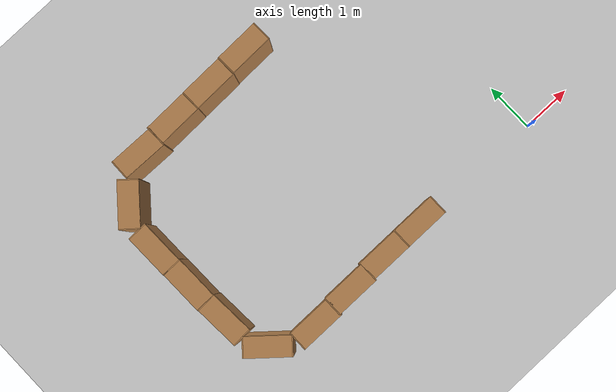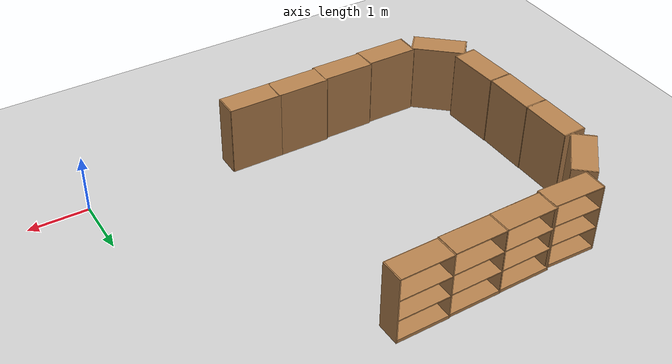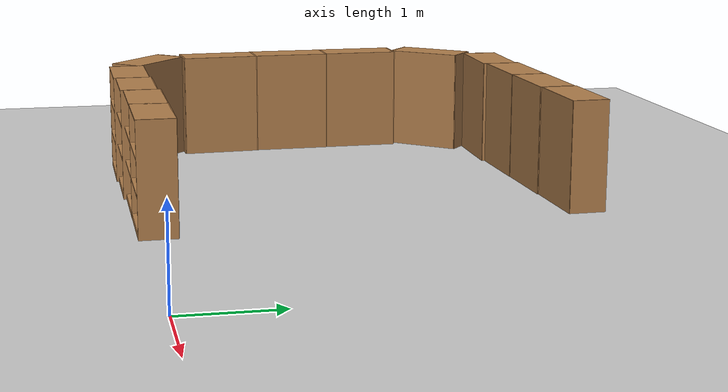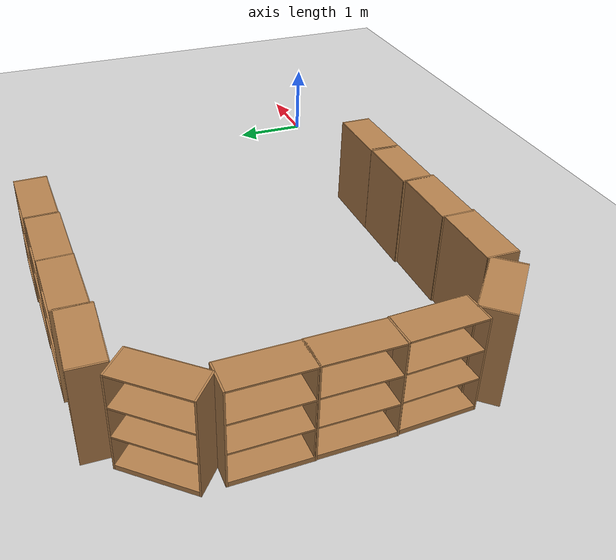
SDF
<sdf version="1.4">
 <world name="default">
  <model name="ground_plane">
   <static>1</static>
   <link name="link">
    <collision name="collision">
     <geometry><plane><normal>0 0 1</normal><size>100 100</size></plane></geometry>
     <surface><friction><ode><mu>100</mu><mu2>50</mu2></ode></friction></surface>
    </collision>
    <visual name="visual">
     <cast_shadows>0</cast_shadows>
     <geometry><plane><normal>0 0 1</normal><size>100 100</size></plane></geometry>
     <material>
      <script><uri>file://media/materials/scripts/gazebo.material</uri><name>Gazebo/Grey</name></script>
     </material>
    </visual>
    <velocity_decay><linear>0</linear><angular>0</angular></velocity_decay>
   </link>
  </model>
  <model name="bookshelf">
   <static>1</static>
   <link name="link">
    <inertial><mass>1</mass></inertial>
    <collision name="back">
     <pose>0 0.005 0.6 0 -0 0</pose>
     <geometry><box><size>0.9 0.01 1.2</size></box></geometry>
    </collision>
    <visual name="visual1">
     <pose>0 0.005 0.6 0 -0 0</pose>
     <geometry><box><size>0.9 0.01 1.2</size></box></geometry>
     <material>
      <script><uri>file://media/materials/scripts/gazebo.material</uri><name>Gazebo/Wood</name></script>
     </material>
    </visual>
    <collision name="left_side">
     <pose>0.45 -0.195 0.6 0 -0 0</pose>
     <geometry><box><size>0.02 0.4 1.2</size></box></geometry>
    </collision>
    <visual name="visual2">
     <pose>0.45 -0.195 0.6 0 -0 0</pose>
     <geometry><box><size>0.02 0.4 1.2</size></box></geometry>
     <material>
      <script><uri>file://media/materials/scripts/gazebo.material</uri><name>Gazebo/Wood</name></script>
     </material>
    </visual>
    <collision name="right_side">
     <pose>-0.45 -0.195 0.6 0 -0 0</pose>
     <geometry><box><size>0.02 0.4 1.2</size></box></geometry>
    </collision>
    <visual name="visual3">
     <pose>-0.45 -0.195 0.6 0 -0 0</pose>
     <geometry><box><size>0.02 0.4 1.2</size></box></geometry>
     <material>
      <script><uri>file://media/materials/scripts/gazebo.material</uri><name>Gazebo/Wood</name></script>
     </material>
    </visual>
    <collision name="bottom">
     <pose>0 -0.195 0.03 0 -0 0</pose>
     <geometry><box><size>0.88 0.4 0.06</size></box></geometry>
    </collision>
    <visual name="visual4">
     <pose>0 -0.195 0.03 0 -0 0</pose>
     <geometry><box><size>0.88 0.4 0.06</size></box></geometry>
     <material>
      <script><uri>file://media/materials/scripts/gazebo.material</uri><name>Gazebo/Wood</name></script>
     </material>
    </visual>
    <collision name="top">
     <pose>0 -0.195 1.19 0 -0 0</pose>
     <geometry><box><size>0.88 0.4 0.02</size></box></geometry>
    </collision>
    <visual name="visual5">
     <pose>0 -0.195 1.19 0 -0 0</pose>
     <geometry><box><size>0.88 0.4 0.02</size></box></geometry>
     <material>
      <script><uri>file://media/materials/scripts/gazebo.material</uri><name>Gazebo/Wood</name></script>
     </material>
    </visual>
    <collision name="low_shelf">
     <pose>0 -0.195 0.43 0 -0 0</pose>
     <geometry><box><size>0.88 0.4 0.02</size></box></geometry>
    </collision>
    <visual name="visual6">
     <pose>0 -0.195 0.43 0 -0 0</pose>
     <geometry><box><size>0.88 0.4 0.02</size></box></geometry>
     <material>
      <script><uri>file://media/materials/scripts/gazebo.material</uri><name>Gazebo/Wood</name></script>
     </material>
    </visual>
    <collision name="high_shelf">
     <pose>0 -0.195 0.8 0 -0 0</pose>
     <geometry><box><size>0.88 0.4 0.02</size></box></geometry>
    </collision>
    <visual name="visual7">
     <pose>0 -0.195 0.8 0 -0 0</pose>
     <geometry><box><size>0.88 0.4 0.02</size></box></geometry>
     <material>
      <script><uri>file://media/materials/scripts/gazebo.material</uri><name>Gazebo/Wood</name></script>
     </material>
    </visual>
    <velocity_decay><linear>0</linear><angular>0</angular></velocity_decay>
   </link>
   <pose>-2.84726 0.305303 0 0 -0 0</pose>
  </model>
  <model name="bookshelf_4">
   <static>1</static>
   <link name="link">
    <inertial><mass>1</mass></inertial>
    <collision name="back">
     <pose>0 0.005 0.6 0 -0 0</pose>
     <geometry><box><size>0.9 0.01 1.2</size></box></geometry>
    </collision>
    <visual name="visual1">
     <pose>0 0.005 0.6 0 -0 0</pose>
     <geometry><box><size>0.9 0.01 1.2</size></box></geometry>
     <material>
      <script><uri>file://media/materials/scripts/gazebo.material</uri><name>Gazebo/Wood</name></script>
     </material>
    </visual>
    <collision name="left_side">
     <pose>0.45 -0.195 0.6 0 -0 0</pose>
     <geometry><box><size>0.02 0.4 1.2</size></box></geometry>
    </collision>
    <visual name="visual2">
     <pose>0.45 -0.195 0.6 0 -0 0</pose>
     <geometry><box><size>0.02 0.4 1.2</size></box></geometry>
     <material>
      <script><uri>file://media/materials/scripts/gazebo.material</uri><name>Gazebo/Wood</name></script>
     </material>
    </visual>
    <collision name="right_side">
     <pose>-0.45 -0.195 0.6 0 -0 0</pose>
     <geometry><box><size>0.02 0.4 1.2</size></box></geometry>
    </collision>
    <visual name="visual3">
     <pose>-0.45 -0.195 0.6 0 -0 0</pose>
     <geometry><box><size>0.02 0.4 1.2</size></box></geometry>
     <material>
      <script><uri>file://media/materials/scripts/gazebo.material</uri><name>Gazebo/Wood</name></script>
     </material>
    </visual>
    <collision name="bottom">
     <pose>0 -0.195 0.03 0 -0 0</pose>
     <geometry><box><size>0.88 0.4 0.06</size></box></geometry>
    </collision>
    <visual name="visual4">
     <pose>0 -0.195 0.03 0 -0 0</pose>
     <geometry><box><size>0.88 0.4 0.06</size></box></geometry>
     <material>
      <script><uri>file://media/materials/scripts/gazebo.material</uri><name>Gazebo/Wood</name></script>
     </material>
    </visual>
    <collision name="top">
     <pose>0 -0.195 1.19 0 -0 0</pose>
     <geometry><box><size>0.88 0.4 0.02</size></box></geometry>
    </collision>
    <visual name="visual5">
     <pose>0 -0.195 1.19 0 -0 0</pose>
     <geometry><box><size>0.88 0.4 0.02</size></box></geometry>
     <material>
      <script><uri>file://media/materials/scripts/gazebo.material</uri><name>Gazebo/Wood</name></script>
     </material>
    </visual>
    <collision name="low_shelf">
     <pose>0 -0.195 0.43 0 -0 0</pose>
     <geometry><box><size>0.88 0.4 0.02</size></box></geometry>
    </collision>
    <visual name="visual6">
     <pose>0 -0.195 0.43 0 -0 0</pose>
     <geometry><box><size>0.88 0.4 0.02</size></box></geometry>
     <material>
      <script><uri>file://media/materials/scripts/gazebo.material</uri><name>Gazebo/Wood</name></script>
     </material>
    </visual>
    <collision name="high_shelf">
     <pose>0 -0.195 0.8 0 -0 0</pose>
     <geometry><box><size>0.88 0.4 0.02</size></box></geometry>
    </collision>
    <visual name="visual7">
     <pose>0 -0.195 0.8 0 -0 0</pose>
     <geometry><box><size>0.88 0.4 0.02</size></box></geometry>
     <material>
      <script><uri>file://media/materials/scripts/gazebo.material</uri><name>Gazebo/Wood</name></script>
     </material>
    </visual>
    <velocity_decay><linear>0</linear><angular>0</angular></velocity_decay>
   </link>
   <pose>-3.91852 4.37082 0 0 0 -3.12</pose>
  </model>
  <model name="bookshelf_5">
   <static>1</static>
   <link name="link">
    <inertial><mass>1</mass></inertial>
    <collision name="back">
     <pose>0 0.005 0.6 0 -0 0</pose>
     <geometry><box><size>0.9 0.01 1.2</size></box></geometry>
    </collision>
    <visual name="visual1">
     <pose>0 0.005 0.6 0 -0 0</pose>
     <geometry><box><size>0.9 0.01 1.2</size></box></geometry>
     <material>
      <script><uri>file://media/materials/scripts/gazebo.material</uri><name>Gazebo/Wood</name></script>
     </material>
    </visual>
    <collision name="left_side">
     <pose>0.45 -0.195 0.6 0 -0 0</pose>
     <geometry><box><size>0.02 0.4 1.2</size></box></geometry>
    </collision>
    <visual name="visual2">
     <pose>0.45 -0.195 0.6 0 -0 0</pose>
     <geometry><box><size>0.02 0.4 1.2</size></box></geometry>
     <material>
      <script><uri>file://media/materials/scripts/gazebo.material</uri><name>Gazebo/Wood</name></script>
     </material>
    </visual>
    <collision name="right_side">
     <pose>-0.45 -0.195 0.6 0 -0 0</pose>
     <geometry><box><size>0.02 0.4 1.2</size></box></geometry>
    </collision>
    <visual name="visual3">
     <pose>-0.45 -0.195 0.6 0 -0 0</pose>
     <geometry><box><size>0.02 0.4 1.2</size></box></geometry>
     <material>
      <script><uri>file://media/materials/scripts/gazebo.material</uri><name>Gazebo/Wood</name></script>
     </material>
    </visual>
    <collision name="bottom">
     <pose>0 -0.195 0.03 0 -0 0</pose>
     <geometry><box><size>0.88 0.4 0.06</size></box></geometry>
    </collision>
    <visual name="visual4">
     <pose>0 -0.195 0.03 0 -0 0</pose>
     <geometry><box><size>0.88 0.4 0.06</size></box></geometry>
     <material>
      <script><uri>file://media/materials/scripts/gazebo.material</uri><name>Gazebo/Wood</name></script>
     </material>
    </visual>
    <collision name="top">
     <pose>0 -0.195 1.19 0 -0 0</pose>
     <geometry><box><size>0.88 0.4 0.02</size></box></geometry>
    </collision>
    <visual name="visual5">
     <pose>0 -0.195 1.19 0 -0 0</pose>
     <geometry><box><size>0.88 0.4 0.02</size></box></geometry>
     <material>
      <script><uri>file://media/materials/scripts/gazebo.material</uri><name>Gazebo/Wood</name></script>
     </material>
    </visual>
    <collision name="low_shelf">
     <pose>0 -0.195 0.43 0 -0 0</pose>
     <geometry><box><size>0.88 0.4 0.02</size></box></geometry>
    </collision>
    <visual name="visual6">
     <pose>0 -0.195 0.43 0 -0 0</pose>
     <geometry><box><size>0.88 0.4 0.02</size></box></geometry>
     <material>
      <script><uri>file://media/materials/scripts/gazebo.material</uri><name>Gazebo/Wood</name></script>
     </material>
    </visual>
    <collision name="high_shelf">
     <pose>0 -0.195 0.8 0 -0 0</pose>
     <geometry><box><size>0.88 0.4 0.02</size></box></geometry>
    </collision>
    <visual name="visual7">
     <pose>0 -0.195 0.8 0 -0 0</pose>
     <geometry><box><size>0.88 0.4 0.02</size></box></geometry>
     <material>
      <script><uri>file://media/materials/scripts/gazebo.material</uri><name>Gazebo/Wood</name></script>
     </material>
    </visual>
    <velocity_decay><linear>0</linear><angular>0</angular></velocity_decay>
   </link>
   <pose>-3.00921 4.40269 0 0 0 -3.12</pose>
  </model>
  <model name="bookshelf_9">
   <static>1</static>
   <link name="link">
    <inertial><mass>1</mass></inertial>
    <collision name="back">
     <pose>0 0.005 0.6 0 -0 0</pose>
     <geometry><box><size>0.9 0.01 1.2</size></box></geometry>
    </collision>
    <visual name="visual1">
     <pose>0 0.005 0.6 0 -0 0</pose>
     <geometry><box><size>0.9 0.01 1.2</size></box></geometry>
     <material>
      <script><uri>file://media/materials/scripts/gazebo.material</uri><name>Gazebo/Wood</name></script>
     </material>
    </visual>
    <collision name="left_side">
     <pose>0.45 -0.195 0.6 0 -0 0</pose>
     <geometry><box><size>0.02 0.4 1.2</size></box></geometry>
    </collision>
    <visual name="visual2">
     <pose>0.45 -0.195 0.6 0 -0 0</pose>
     <geometry><box><size>0.02 0.4 1.2</size></box></geometry>
     <material>
      <script><uri>file://media/materials/scripts/gazebo.material</uri><name>Gazebo/Wood</name></script>
     </material>
    </visual>
    <collision name="right_side">
     <pose>-0.45 -0.195 0.6 0 -0 0</pose>
     <geometry><box><size>0.02 0.4 1.2</size></box></geometry>
    </collision>
    <visual name="visual3">
     <pose>-0.45 -0.195 0.6 0 -0 0</pose>
     <geometry><box><size>0.02 0.4 1.2</size></box></geometry>
     <material>
      <script><uri>file://media/materials/scripts/gazebo.material</uri><name>Gazebo/Wood</name></script>
     </material>
    </visual>
    <collision name="bottom">
     <pose>0 -0.195 0.03 0 -0 0</pose>
     <geometry><box><size>0.88 0.4 0.06</size></box></geometry>
    </collision>
    <visual name="visual4">
     <pose>0 -0.195 0.03 0 -0 0</pose>
     <geometry><box><size>0.88 0.4 0.06</size></box></geometry>
     <material>
      <script><uri>file://media/materials/scripts/gazebo.material</uri><name>Gazebo/Wood</name></script>
     </material>
    </visual>
    <collision name="top">
     <pose>0 -0.195 1.19 0 -0 0</pose>
     <geometry><box><size>0.88 0.4 0.02</size></box></geometry>
    </collision>
    <visual name="visual5">
     <pose>0 -0.195 1.19 0 -0 0</pose>
     <geometry><box><size>0.88 0.4 0.02</size></box></geometry>
     <material>
      <script><uri>file://media/materials/scripts/gazebo.material</uri><name>Gazebo/Wood</name></script>
     </material>
    </visual>
    <collision name="low_shelf">
     <pose>0 -0.195 0.43 0 -0 0</pose>
     <geometry><box><size>0.88 0.4 0.02</size></box></geometry>
    </collision>
    <visual name="visual6">
     <pose>0 -0.195 0.43 0 -0 0</pose>
     <geometry><box><size>0.88 0.4 0.02</size></box></geometry>
     <material>
      <script><uri>file://media/materials/scripts/gazebo.material</uri><name>Gazebo/Wood</name></script>
     </material>
    </visual>
    <collision name="high_shelf">
     <pose>0 -0.195 0.8 0 -0 0</pose>
     <geometry><box><size>0.88 0.4 0.02</size></box></geometry>
    </collision>
    <visual name="visual7">
     <pose>0 -0.195 0.8 0 -0 0</pose>
     <geometry><box><size>0.88 0.4 0.02</size></box></geometry>
     <material>
      <script><uri>file://media/materials/scripts/gazebo.material</uri><name>Gazebo/Wood</name></script>
     </material>
    </visual>
    <velocity_decay><linear>0</linear><angular>0</angular></velocity_decay>
   </link>
   <pose>-3.71662 0.30328 0 0 -0 0</pose>
  </model>
  <model name="bookshelf_10">
   <static>1</static>
   <link name="link">
    <inertial><mass>1</mass></inertial>
    <collision name="back">
     <pose>0 0.005 0.6 0 -0 0</pose>
     <geometry><box><size>0.9 0.01 1.2</size></box></geometry>
    </collision>
    <visual name="visual1">
     <pose>0 0.005 0.6 0 -0 0</pose>
     <geometry><box><size>0.9 0.01 1.2</size></box></geometry>
     <material>
      <script><uri>file://media/materials/scripts/gazebo.material</uri><name>Gazebo/Wood</name></script>
     </material>
    </visual>
    <collision name="left_side">
     <pose>0.45 -0.195 0.6 0 -0 0</pose>
     <geometry><box><size>0.02 0.4 1.2</size></box></geometry>
    </collision>
    <visual name="visual2">
     <pose>0.45 -0.195 0.6 0 -0 0</pose>
     <geometry><box><size>0.02 0.4 1.2</size></box></geometry>
     <material>
      <script><uri>file://media/materials/scripts/gazebo.material</uri><name>Gazebo/Wood</name></script>
     </material>
    </visual>
    <collision name="right_side">
     <pose>-0.45 -0.195 0.6 0 -0 0</pose>
     <geometry><box><size>0.02 0.4 1.2</size></box></geometry>
    </collision>
    <visual name="visual3">
     <pose>-0.45 -0.195 0.6 0 -0 0</pose>
     <geometry><box><size>0.02 0.4 1.2</size></box></geometry>
     <material>
      <script><uri>file://media/materials/scripts/gazebo.material</uri><name>Gazebo/Wood</name></script>
     </material>
    </visual>
    <collision name="bottom">
     <pose>0 -0.195 0.03 0 -0 0</pose>
     <geometry><box><size>0.88 0.4 0.06</size></box></geometry>
    </collision>
    <visual name="visual4">
     <pose>0 -0.195 0.03 0 -0 0</pose>
     <geometry><box><size>0.88 0.4 0.06</size></box></geometry>
     <material>
      <script><uri>file://media/materials/scripts/gazebo.material</uri><name>Gazebo/Wood</name></script>
     </material>
    </visual>
    <collision name="top">
     <pose>0 -0.195 1.19 0 -0 0</pose>
     <geometry><box><size>0.88 0.4 0.02</size></box></geometry>
    </collision>
    <visual name="visual5">
     <pose>0 -0.195 1.19 0 -0 0</pose>
     <geometry><box><size>0.88 0.4 0.02</size></box></geometry>
     <material>
      <script><uri>file://media/materials/scripts/gazebo.material</uri><name>Gazebo/Wood</name></script>
     </material>
    </visual>
    <collision name="low_shelf">
     <pose>0 -0.195 0.43 0 -0 0</pose>
     <geometry><box><size>0.88 0.4 0.02</size></box></geometry>
    </collision>
    <visual name="visual6">
     <pose>0 -0.195 0.43 0 -0 0</pose>
     <geometry><box><size>0.88 0.4 0.02</size></box></geometry>
     <material>
      <script><uri>file://media/materials/scripts/gazebo.material</uri><name>Gazebo/Wood</name></script>
     </material>
    </visual>
    <collision name="high_shelf">
     <pose>0 -0.195 0.8 0 -0 0</pose>
     <geometry><box><size>0.88 0.4 0.02</size></box></geometry>
    </collision>
    <visual name="visual7">
     <pose>0 -0.195 0.8 0 -0 0</pose>
     <geometry><box><size>0.88 0.4 0.02</size></box></geometry>
     <material>
      <script><uri>file://media/materials/scripts/gazebo.material</uri><name>Gazebo/Wood</name></script>
     </material>
    </visual>
    <velocity_decay><linear>0</linear><angular>0</angular></velocity_decay>
   </link>
   <pose>-4.59576 0.271281 0 0 -0 0</pose>
  </model>
  <model name="bookshelf_13">
   <static>1</static>
   <link name="link">
    <inertial><mass>1</mass></inertial>
    <collision name="back">
     <pose>0 0.005 0.6 0 -0 0</pose>
     <geometry><box><size>0.9 0.01 1.2</size></box></geometry>
    </collision>
    <visual name="visual1">
     <pose>0 0.005 0.6 0 -0 0</pose>
     <geometry><box><size>0.9 0.01 1.2</size></box></geometry>
     <material>
      <script><uri>file://media/materials/scripts/gazebo.material</uri><name>Gazebo/Wood</name></script>
     </material>
    </visual>
    <collision name="left_side">
     <pose>0.45 -0.195 0.6 0 -0 0</pose>
     <geometry><box><size>0.02 0.4 1.2</size></box></geometry>
    </collision>
    <visual name="visual2">
     <pose>0.45 -0.195 0.6 0 -0 0</pose>
     <geometry><box><size>0.02 0.4 1.2</size></box></geometry>
     <material>
      <script><uri>file://media/materials/scripts/gazebo.material</uri><name>Gazebo/Wood</name></script>
     </material>
    </visual>
    <collision name="right_side">
     <pose>-0.45 -0.195 0.6 0 -0 0</pose>
     <geometry><box><size>0.02 0.4 1.2</size></box></geometry>
    </collision>
    <visual name="visual3">
     <pose>-0.45 -0.195 0.6 0 -0 0</pose>
     <geometry><box><size>0.02 0.4 1.2</size></box></geometry>
     <material>
      <script><uri>file://media/materials/scripts/gazebo.material</uri><name>Gazebo/Wood</name></script>
     </material>
    </visual>
    <collision name="bottom">
     <pose>0 -0.195 0.03 0 -0 0</pose>
     <geometry><box><size>0.88 0.4 0.06</size></box></geometry>
    </collision>
    <visual name="visual4">
     <pose>0 -0.195 0.03 0 -0 0</pose>
     <geometry><box><size>0.88 0.4 0.06</size></box></geometry>
     <material>
      <script><uri>file://media/materials/scripts/gazebo.material</uri><name>Gazebo/Wood</name></script>
     </material>
    </visual>
    <collision name="top">
     <pose>0 -0.195 1.19 0 -0 0</pose>
     <geometry><box><size>0.88 0.4 0.02</size></box></geometry>
    </collision>
    <visual name="visual5">
     <pose>0 -0.195 1.19 0 -0 0</pose>
     <geometry><box><size>0.88 0.4 0.02</size></box></geometry>
     <material>
      <script><uri>file://media/materials/scripts/gazebo.material</uri><name>Gazebo/Wood</name></script>
     </material>
    </visual>
    <collision name="low_shelf">
     <pose>0 -0.195 0.43 0 -0 0</pose>
     <geometry><box><size>0.88 0.4 0.02</size></box></geometry>
    </collision>
    <visual name="visual6">
     <pose>0 -0.195 0.43 0 -0 0</pose>
     <geometry><box><size>0.88 0.4 0.02</size></box></geometry>
     <material>
      <script><uri>file://media/materials/scripts/gazebo.material</uri><name>Gazebo/Wood</name></script>
     </material>
    </visual>
    <collision name="high_shelf">
     <pose>0 -0.195 0.8 0 -0 0</pose>
     <geometry><box><size>0.88 0.4 0.02</size></box></geometry>
    </collision>
    <visual name="visual7">
     <pose>0 -0.195 0.8 0 -0 0</pose>
     <geometry><box><size>0.88 0.4 0.02</size></box></geometry>
     <material>
      <script><uri>file://media/materials/scripts/gazebo.material</uri><name>Gazebo/Wood</name></script>
     </material>
    </visual>
    <velocity_decay><linear>0</linear><angular>0</angular></velocity_decay>
   </link>
   <pose>-5.47579 0.247086 0 0 -0 0</pose>
  </model>
  <model name="bookshelf_14">
   <static>1</static>
   <link name="link">
    <inertial><mass>1</mass></inertial>
    <collision name="back">
     <pose>0 0.005 0.6 0 -0 0</pose>
     <geometry><box><size>0.9 0.01 1.2</size></box></geometry>
    </collision>
    <visual name="visual1">
     <pose>0 0.005 0.6 0 -0 0</pose>
     <geometry><box><size>0.9 0.01 1.2</size></box></geometry>
     <material>
      <script><uri>file://media/materials/scripts/gazebo.material</uri><name>Gazebo/Wood</name></script>
     </material>
    </visual>
    <collision name="left_side">
     <pose>0.45 -0.195 0.6 0 -0 0</pose>
     <geometry><box><size>0.02 0.4 1.2</size></box></geometry>
    </collision>
    <visual name="visual2">
     <pose>0.45 -0.195 0.6 0 -0 0</pose>
     <geometry><box><size>0.02 0.4 1.2</size></box></geometry>
     <material>
      <script><uri>file://media/materials/scripts/gazebo.material</uri><name>Gazebo/Wood</name></script>
     </material>
    </visual>
    <collision name="right_side">
     <pose>-0.45 -0.195 0.6 0 -0 0</pose>
     <geometry><box><size>0.02 0.4 1.2</size></box></geometry>
    </collision>
    <visual name="visual3">
     <pose>-0.45 -0.195 0.6 0 -0 0</pose>
     <geometry><box><size>0.02 0.4 1.2</size></box></geometry>
     <material>
      <script><uri>file://media/materials/scripts/gazebo.material</uri><name>Gazebo/Wood</name></script>
     </material>
    </visual>
    <collision name="bottom">
     <pose>0 -0.195 0.03 0 -0 0</pose>
     <geometry><box><size>0.88 0.4 0.06</size></box></geometry>
    </collision>
    <visual name="visual4">
     <pose>0 -0.195 0.03 0 -0 0</pose>
     <geometry><box><size>0.88 0.4 0.06</size></box></geometry>
     <material>
      <script><uri>file://media/materials/scripts/gazebo.material</uri><name>Gazebo/Wood</name></script>
     </material>
    </visual>
    <collision name="top">
     <pose>0 -0.195 1.19 0 -0 0</pose>
     <geometry><box><size>0.88 0.4 0.02</size></box></geometry>
    </collision>
    <visual name="visual5">
     <pose>0 -0.195 1.19 0 -0 0</pose>
     <geometry><box><size>0.88 0.4 0.02</size></box></geometry>
     <material>
      <script><uri>file://media/materials/scripts/gazebo.material</uri><name>Gazebo/Wood</name></script>
     </material>
    </visual>
    <collision name="low_shelf">
     <pose>0 -0.195 0.43 0 -0 0</pose>
     <geometry><box><size>0.88 0.4 0.02</size></box></geometry>
    </collision>
    <visual name="visual6">
     <pose>0 -0.195 0.43 0 -0 0</pose>
     <geometry><box><size>0.88 0.4 0.02</size></box></geometry>
     <material>
      <script><uri>file://media/materials/scripts/gazebo.material</uri><name>Gazebo/Wood</name></script>
     </material>
    </visual>
    <collision name="high_shelf">
     <pose>0 -0.195 0.8 0 -0 0</pose>
     <geometry><box><size>0.88 0.4 0.02</size></box></geometry>
    </collision>
    <visual name="visual7">
     <pose>0 -0.195 0.8 0 -0 0</pose>
     <geometry><box><size>0.88 0.4 0.02</size></box></geometry>
     <material>
      <script><uri>file://media/materials/scripts/gazebo.material</uri><name>Gazebo/Wood</name></script>
     </material>
    </visual>
    <velocity_decay><linear>0</linear><angular>0</angular></velocity_decay>
   </link>
   <pose>-6.25337 0.499711 0 0 0 -0.72</pose>
  </model>
  <model name="bookshelf_15">
   <static>1</static>
   <link name="link">
    <inertial><mass>1</mass></inertial>
    <collision name="back">
     <pose>0 0.005 0.6 0 -0 0</pose>
     <geometry><box><size>0.9 0.01 1.2</size></box></geometry>
    </collision>
    <visual name="visual1">
     <pose>0 0.005 0.6 0 -0 0</pose>
     <geometry><box><size>0.9 0.01 1.2</size></box></geometry>
     <material>
      <script><uri>file://media/materials/scripts/gazebo.material</uri><name>Gazebo/Wood</name></script>
     </material>
    </visual>
    <collision name="left_side">
     <pose>0.45 -0.195 0.6 0 -0 0</pose>
     <geometry><box><size>0.02 0.4 1.2</size></box></geometry>
    </collision>
    <visual name="visual2">
     <pose>0.45 -0.195 0.6 0 -0 0</pose>
     <geometry><box><size>0.02 0.4 1.2</size></box></geometry>
     <material>
      <script><uri>file://media/materials/scripts/gazebo.material</uri><name>Gazebo/Wood</name></script>
     </material>
    </visual>
    <collision name="right_side">
     <pose>-0.45 -0.195 0.6 0 -0 0</pose>
     <geometry><box><size>0.02 0.4 1.2</size></box></geometry>
    </collision>
    <visual name="visual3">
     <pose>-0.45 -0.195 0.6 0 -0 0</pose>
     <geometry><box><size>0.02 0.4 1.2</size></box></geometry>
     <material>
      <script><uri>file://media/materials/scripts/gazebo.material</uri><name>Gazebo/Wood</name></script>
     </material>
    </visual>
    <collision name="bottom">
     <pose>0 -0.195 0.03 0 -0 0</pose>
     <geometry><box><size>0.88 0.4 0.06</size></box></geometry>
    </collision>
    <visual name="visual4">
     <pose>0 -0.195 0.03 0 -0 0</pose>
     <geometry><box><size>0.88 0.4 0.06</size></box></geometry>
     <material>
      <script><uri>file://media/materials/scripts/gazebo.material</uri><name>Gazebo/Wood</name></script>
     </material>
    </visual>
    <collision name="top">
     <pose>0 -0.195 1.19 0 -0 0</pose>
     <geometry><box><size>0.88 0.4 0.02</size></box></geometry>
    </collision>
    <visual name="visual5">
     <pose>0 -0.195 1.19 0 -0 0</pose>
     <geometry><box><size>0.88 0.4 0.02</size></box></geometry>
     <material>
      <script><uri>file://media/materials/scripts/gazebo.material</uri><name>Gazebo/Wood</name></script>
     </material>
    </visual>
    <collision name="low_shelf">
     <pose>0 -0.195 0.43 0 -0 0</pose>
     <geometry><box><size>0.88 0.4 0.02</size></box></geometry>
    </collision>
    <visual name="visual6">
     <pose>0 -0.195 0.43 0 -0 0</pose>
     <geometry><box><size>0.88 0.4 0.02</size></box></geometry>
     <material>
      <script><uri>file://media/materials/scripts/gazebo.material</uri><name>Gazebo/Wood</name></script>
     </material>
    </visual>
    <collision name="high_shelf">
     <pose>0 -0.195 0.8 0 -0 0</pose>
     <geometry><box><size>0.88 0.4 0.02</size></box></geometry>
    </collision>
    <visual name="visual7">
     <pose>0 -0.195 0.8 0 -0 0</pose>
     <geometry><box><size>0.88 0.4 0.02</size></box></geometry>
     <material>
      <script><uri>file://media/materials/scripts/gazebo.material</uri><name>Gazebo/Wood</name></script>
     </material>
    </visual>
    <velocity_decay><linear>0</linear><angular>0</angular></velocity_decay>
   </link>
   <pose>-4.81679 4.34624 0 0 0 -3.12</pose>
  </model>
  <model name="bookshelf_16">
   <static>1</static>
   <link name="link">
    <inertial><mass>1</mass></inertial>
    <collision name="back">
     <pose>0 0.005 0.6 0 -0 0</pose>
     <geometry><box><size>0.9 0.01 1.2</size></box></geometry>
    </collision>
    <visual name="visual1">
     <pose>0 0.005 0.6 0 -0 0</pose>
     <geometry><box><size>0.9 0.01 1.2</size></box></geometry>
     <material>
      <script><uri>file://media/materials/scripts/gazebo.material</uri><name>Gazebo/Wood</name></script>
     </material>
    </visual>
    <collision name="left_side">
     <pose>0.45 -0.195 0.6 0 -0 0</pose>
     <geometry><box><size>0.02 0.4 1.2</size></box></geometry>
    </collision>
    <visual name="visual2">
     <pose>0.45 -0.195 0.6 0 -0 0</pose>
     <geometry><box><size>0.02 0.4 1.2</size></box></geometry>
     <material>
      <script><uri>file://media/materials/scripts/gazebo.material</uri><name>Gazebo/Wood</name></script>
     </material>
    </visual>
    <collision name="right_side">
     <pose>-0.45 -0.195 0.6 0 -0 0</pose>
     <geometry><box><size>0.02 0.4 1.2</size></box></geometry>
    </collision>
    <visual name="visual3">
     <pose>-0.45 -0.195 0.6 0 -0 0</pose>
     <geometry><box><size>0.02 0.4 1.2</size></box></geometry>
     <material>
      <script><uri>file://media/materials/scripts/gazebo.material</uri><name>Gazebo/Wood</name></script>
     </material>
    </visual>
    <collision name="bottom">
     <pose>0 -0.195 0.03 0 -0 0</pose>
     <geometry><box><size>0.88 0.4 0.06</size></box></geometry>
    </collision>
    <visual name="visual4">
     <pose>0 -0.195 0.03 0 -0 0</pose>
     <geometry><box><size>0.88 0.4 0.06</size></box></geometry>
     <material>
      <script><uri>file://media/materials/scripts/gazebo.material</uri><name>Gazebo/Wood</name></script>
     </material>
    </visual>
    <collision name="top">
     <pose>0 -0.195 1.19 0 -0 0</pose>
     <geometry><box><size>0.88 0.4 0.02</size></box></geometry>
    </collision>
    <visual name="visual5">
     <pose>0 -0.195 1.19 0 -0 0</pose>
     <geometry><box><size>0.88 0.4 0.02</size></box></geometry>
     <material>
      <script><uri>file://media/materials/scripts/gazebo.material</uri><name>Gazebo/Wood</name></script>
     </material>
    </visual>
    <collision name="low_shelf">
     <pose>0 -0.195 0.43 0 -0 0</pose>
     <geometry><box><size>0.88 0.4 0.02</size></box></geometry>
    </collision>
    <visual name="visual6">
     <pose>0 -0.195 0.43 0 -0 0</pose>
     <geometry><box><size>0.88 0.4 0.02</size></box></geometry>
     <material>
      <script><uri>file://media/materials/scripts/gazebo.material</uri><name>Gazebo/Wood</name></script>
     </material>
    </visual>
    <collision name="high_shelf">
     <pose>0 -0.195 0.8 0 -0 0</pose>
     <geometry><box><size>0.88 0.4 0.02</size></box></geometry>
    </collision>
    <visual name="visual7">
     <pose>0 -0.195 0.8 0 -0 0</pose>
     <geometry><box><size>0.88 0.4 0.02</size></box></geometry>
     <material>
      <script><uri>file://media/materials/scripts/gazebo.material</uri><name>Gazebo/Wood</name></script>
     </material>
    </visual>
    <velocity_decay><linear>0</linear><angular>0</angular></velocity_decay>
   </link>
   <pose>-6.31756 3.81372 0 0 0 -2.28</pose>
  </model>
  <model name="bookshelf_17">
   <static>1</static>
   <link name="link">
    <inertial><mass>1</mass></inertial>
    <collision name="back">
     <pose>0 0.005 0.6 0 -0 0</pose>
     <geometry><box><size>0.9 0.01 1.2</size></box></geometry>
    </collision>
    <visual name="visual1">
     <pose>0 0.005 0.6 0 -0 0</pose>
     <geometry><box><size>0.9 0.01 1.2</size></box></geometry>
     <material>
      <script><uri>file://media/materials/scripts/gazebo.material</uri><name>Gazebo/Wood</name></script>
     </material>
    </visual>
    <collision name="left_side">
     <pose>0.45 -0.195 0.6 0 -0 0</pose>
     <geometry><box><size>0.02 0.4 1.2</size></box></geometry>
    </collision>
    <visual name="visual2">
     <pose>0.45 -0.195 0.6 0 -0 0</pose>
     <geometry><box><size>0.02 0.4 1.2</size></box></geometry>
     <material>
      <script><uri>file://media/materials/scripts/gazebo.material</uri><name>Gazebo/Wood</name></script>
     </material>
    </visual>
    <collision name="right_side">
     <pose>-0.45 -0.195 0.6 0 -0 0</pose>
     <geometry><box><size>0.02 0.4 1.2</size></box></geometry>
    </collision>
    <visual name="visual3">
     <pose>-0.45 -0.195 0.6 0 -0 0</pose>
     <geometry><box><size>0.02 0.4 1.2</size></box></geometry>
     <material>
      <script><uri>file://media/materials/scripts/gazebo.material</uri><name>Gazebo/Wood</name></script>
     </material>
    </visual>
    <collision name="bottom">
     <pose>0 -0.195 0.03 0 -0 0</pose>
     <geometry><box><size>0.88 0.4 0.06</size></box></geometry>
    </collision>
    <visual name="visual4">
     <pose>0 -0.195 0.03 0 -0 0</pose>
     <geometry><box><size>0.88 0.4 0.06</size></box></geometry>
     <material>
      <script><uri>file://media/materials/scripts/gazebo.material</uri><name>Gazebo/Wood</name></script>
     </material>
    </visual>
    <collision name="top">
     <pose>0 -0.195 1.19 0 -0 0</pose>
     <geometry><box><size>0.88 0.4 0.02</size></box></geometry>
    </collision>
    <visual name="visual5">
     <pose>0 -0.195 1.19 0 -0 0</pose>
     <geometry><box><size>0.88 0.4 0.02</size></box></geometry>
     <material>
      <script><uri>file://media/materials/scripts/gazebo.material</uri><name>Gazebo/Wood</name></script>
     </material>
    </visual>
    <collision name="low_shelf">
     <pose>0 -0.195 0.43 0 -0 0</pose>
     <geometry><box><size>0.88 0.4 0.02</size></box></geometry>
    </collision>
    <visual name="visual6">
     <pose>0 -0.195 0.43 0 -0 0</pose>
     <geometry><box><size>0.88 0.4 0.02</size></box></geometry>
     <material>
      <script><uri>file://media/materials/scripts/gazebo.material</uri><name>Gazebo/Wood</name></script>
     </material>
    </visual>
    <collision name="high_shelf">
     <pose>0 -0.195 0.8 0 -0 0</pose>
     <geometry><box><size>0.88 0.4 0.02</size></box></geometry>
    </collision>
    <visual name="visual7">
     <pose>0 -0.195 0.8 0 -0 0</pose>
     <geometry><box><size>0.88 0.4 0.02</size></box></geometry>
     <material>
      <script><uri>file://media/materials/scripts/gazebo.material</uri><name>Gazebo/Wood</name></script>
     </material>
    </visual>
    <velocity_decay><linear>0</linear><angular>0</angular></velocity_decay>
   </link>
   <pose>-5.71994 4.30846 0 0 -0 3.12318</pose>
  </model>
  <model name="bookshelf_21">
   <static>1</static>
   <link name="link">
    <inertial><mass>1</mass></inertial>
    <collision name="back">
     <pose>0 0.005 0.6 0 -0 0</pose>
     <geometry><box><size>0.9 0.01 1.2</size></box></geometry>
    </collision>
    <visual name="visual1">
     <pose>0 0.005 0.6 0 -0 0</pose>
     <geometry><box><size>0.9 0.01 1.2</size></box></geometry>
     <material>
      <script><uri>file://media/materials/scripts/gazebo.material</uri><name>Gazebo/Wood</name></script>
     </material>
    </visual>
    <collision name="left_side">
     <pose>0.45 -0.195 0.6 0 -0 0</pose>
     <geometry><box><size>0.02 0.4 1.2</size></box></geometry>
    </collision>
    <visual name="visual2">
     <pose>0.45 -0.195 0.6 0 -0 0</pose>
     <geometry><box><size>0.02 0.4 1.2</size></box></geometry>
     <material>
      <script><uri>file://media/materials/scripts/gazebo.material</uri><name>Gazebo/Wood</name></script>
     </material>
    </visual>
    <collision name="right_side">
     <pose>-0.45 -0.195 0.6 0 -0 0</pose>
     <geometry><box><size>0.02 0.4 1.2</size></box></geometry>
    </collision>
    <visual name="visual3">
     <pose>-0.45 -0.195 0.6 0 -0 0</pose>
     <geometry><box><size>0.02 0.4 1.2</size></box></geometry>
     <material>
      <script><uri>file://media/materials/scripts/gazebo.material</uri><name>Gazebo/Wood</name></script>
     </material>
    </visual>
    <collision name="bottom">
     <pose>0 -0.195 0.03 0 -0 0</pose>
     <geometry><box><size>0.88 0.4 0.06</size></box></geometry>
    </collision>
    <visual name="visual4">
     <pose>0 -0.195 0.03 0 -0 0</pose>
     <geometry><box><size>0.88 0.4 0.06</size></box></geometry>
     <material>
      <script><uri>file://media/materials/scripts/gazebo.material</uri><name>Gazebo/Wood</name></script>
     </material>
    </visual>
    <collision name="top">
     <pose>0 -0.195 1.19 0 -0 0</pose>
     <geometry><box><size>0.88 0.4 0.02</size></box></geometry>
    </collision>
    <visual name="visual5">
     <pose>0 -0.195 1.19 0 -0 0</pose>
     <geometry><box><size>0.88 0.4 0.02</size></box></geometry>
     <material>
      <script><uri>file://media/materials/scripts/gazebo.material</uri><name>Gazebo/Wood</name></script>
     </material>
    </visual>
    <collision name="low_shelf">
     <pose>0 -0.195 0.43 0 -0 0</pose>
     <geometry><box><size>0.88 0.4 0.02</size></box></geometry>
    </collision>
    <visual name="visual6">
     <pose>0 -0.195 0.43 0 -0 0</pose>
     <geometry><box><size>0.88 0.4 0.02</size></box></geometry>
     <material>
      <script><uri>file://media/materials/scripts/gazebo.material</uri><name>Gazebo/Wood</name></script>
     </material>
    </visual>
    <collision name="high_shelf">
     <pose>0 -0.195 0.8 0 -0 0</pose>
     <geometry><box><size>0.88 0.4 0.02</size></box></geometry>
    </collision>
    <visual name="visual7">
     <pose>0 -0.195 0.8 0 -0 0</pose>
     <geometry><box><size>0.88 0.4 0.02</size></box></geometry>
     <material>
      <script><uri>file://media/materials/scripts/gazebo.material</uri><name>Gazebo/Wood</name></script>
     </material>
    </visual>
    <velocity_decay><linear>0</linear><angular>0</angular></velocity_decay>
   </link>
   <pose>-6.43313 1.24556 0 0 0 -1.52</pose>
  </model>
  <model name="bookshelf_22">
   <static>1</static>
   <link name="link">
    <inertial><mass>1</mass></inertial>
    <collision name="back">
     <pose>0 0.005 0.6 0 -0 0</pose>
     <geometry><box><size>0.9 0.01 1.2</size></box></geometry>
    </collision>
    <visual name="visual1">
     <pose>0 0.005 0.6 0 -0 0</pose>
     <geometry><box><size>0.9 0.01 1.2</size></box></geometry>
     <material>
      <script><uri>file://media/materials/scripts/gazebo.material</uri><name>Gazebo/Wood</name></script>
     </material>
    </visual>
    <collision name="left_side">
     <pose>0.45 -0.195 0.6 0 -0 0</pose>
     <geometry><box><size>0.02 0.4 1.2</size></box></geometry>
    </collision>
    <visual name="visual2">
     <pose>0.45 -0.195 0.6 0 -0 0</pose>
     <geometry><box><size>0.02 0.4 1.2</size></box></geometry>
     <material>
      <script><uri>file://media/materials/scripts/gazebo.material</uri><name>Gazebo/Wood</name></script>
     </material>
    </visual>
    <collision name="right_side">
     <pose>-0.45 -0.195 0.6 0 -0 0</pose>
     <geometry><box><size>0.02 0.4 1.2</size></box></geometry>
    </collision>
    <visual name="visual3">
     <pose>-0.45 -0.195 0.6 0 -0 0</pose>
     <geometry><box><size>0.02 0.4 1.2</size></box></geometry>
     <material>
      <script><uri>file://media/materials/scripts/gazebo.material</uri><name>Gazebo/Wood</name></script>
     </material>
    </visual>
    <collision name="bottom">
     <pose>0 -0.195 0.03 0 -0 0</pose>
     <geometry><box><size>0.88 0.4 0.06</size></box></geometry>
    </collision>
    <visual name="visual4">
     <pose>0 -0.195 0.03 0 -0 0</pose>
     <geometry><box><size>0.88 0.4 0.06</size></box></geometry>
     <material>
      <script><uri>file://media/materials/scripts/gazebo.material</uri><name>Gazebo/Wood</name></script>
     </material>
    </visual>
    <collision name="top">
     <pose>0 -0.195 1.19 0 -0 0</pose>
     <geometry><box><size>0.88 0.4 0.02</size></box></geometry>
    </collision>
    <visual name="visual5">
     <pose>0 -0.195 1.19 0 -0 0</pose>
     <geometry><box><size>0.88 0.4 0.02</size></box></geometry>
     <material>
      <script><uri>file://media/materials/scripts/gazebo.material</uri><name>Gazebo/Wood</name></script>
     </material>
    </visual>
    <collision name="low_shelf">
     <pose>0 -0.195 0.43 0 -0 0</pose>
     <geometry><box><size>0.88 0.4 0.02</size></box></geometry>
    </collision>
    <visual name="visual6">
     <pose>0 -0.195 0.43 0 -0 0</pose>
     <geometry><box><size>0.88 0.4 0.02</size></box></geometry>
     <material>
      <script><uri>file://media/materials/scripts/gazebo.material</uri><name>Gazebo/Wood</name></script>
     </material>
    </visual>
    <collision name="high_shelf">
     <pose>0 -0.195 0.8 0 -0 0</pose>
     <geometry><box><size>0.88 0.4 0.02</size></box></geometry>
    </collision>
    <visual name="visual7">
     <pose>0 -0.195 0.8 0 -0 0</pose>
     <geometry><box><size>0.88 0.4 0.02</size></box></geometry>
     <material>
      <script><uri>file://media/materials/scripts/gazebo.material</uri><name>Gazebo/Wood</name></script>
     </material>
    </visual>
    <velocity_decay><linear>0</linear><angular>0</angular></velocity_decay>
   </link>
   <pose>-6.47103 2.13867 0 0 0 -1.56</pose>
  </model>
  <model name="bookshelf_23">
   <static>1</static>
   <link name="link">
    <inertial><mass>1</mass></inertial>
    <collision name="back">
     <pose>0 0.005 0.6 0 -0 0</pose>
     <geometry><box><size>0.9 0.01 1.2</size></box></geometry>
    </collision>
    <visual name="visual1">
     <pose>0 0.005 0.6 0 -0 0</pose>
     <geometry><box><size>0.9 0.01 1.2</size></box></geometry>
     <material>
      <script><uri>file://media/materials/scripts/gazebo.material</uri><name>Gazebo/Wood</name></script>
     </material>
    </visual>
    <collision name="left_side">
     <pose>0.45 -0.195 0.6 0 -0 0</pose>
     <geometry><box><size>0.02 0.4 1.2</size></box></geometry>
    </collision>
    <visual name="visual2">
     <pose>0.45 -0.195 0.6 0 -0 0</pose>
     <geometry><box><size>0.02 0.4 1.2</size></box></geometry>
     <material>
      <script><uri>file://media/materials/scripts/gazebo.material</uri><name>Gazebo/Wood</name></script>
     </material>
    </visual>
    <collision name="right_side">
     <pose>-0.45 -0.195 0.6 0 -0 0</pose>
     <geometry><box><size>0.02 0.4 1.2</size></box></geometry>
    </collision>
    <visual name="visual3">
     <pose>-0.45 -0.195 0.6 0 -0 0</pose>
     <geometry><box><size>0.02 0.4 1.2</size></box></geometry>
     <material>
      <script><uri>file://media/materials/scripts/gazebo.material</uri><name>Gazebo/Wood</name></script>
     </material>
    </visual>
    <collision name="bottom">
     <pose>0 -0.195 0.03 0 -0 0</pose>
     <geometry><box><size>0.88 0.4 0.06</size></box></geometry>
    </collision>
    <visual name="visual4">
     <pose>0 -0.195 0.03 0 -0 0</pose>
     <geometry><box><size>0.88 0.4 0.06</size></box></geometry>
     <material>
      <script><uri>file://media/materials/scripts/gazebo.material</uri><name>Gazebo/Wood</name></script>
     </material>
    </visual>
    <collision name="top">
     <pose>0 -0.195 1.19 0 -0 0</pose>
     <geometry><box><size>0.88 0.4 0.02</size></box></geometry>
    </collision>
    <visual name="visual5">
     <pose>0 -0.195 1.19 0 -0 0</pose>
     <geometry><box><size>0.88 0.4 0.02</size></box></geometry>
     <material>
      <script><uri>file://media/materials/scripts/gazebo.material</uri><name>Gazebo/Wood</name></script>
     </material>
    </visual>
    <collision name="low_shelf">
     <pose>0 -0.195 0.43 0 -0 0</pose>
     <geometry><box><size>0.88 0.4 0.02</size></box></geometry>
    </collision>
    <visual name="visual6">
     <pose>0 -0.195 0.43 0 -0 0</pose>
     <geometry><box><size>0.88 0.4 0.02</size></box></geometry>
     <material>
      <script><uri>file://media/materials/scripts/gazebo.material</uri><name>Gazebo/Wood</name></script>
     </material>
    </visual>
    <collision name="high_shelf">
     <pose>0 -0.195 0.8 0 -0 0</pose>
     <geometry><box><size>0.88 0.4 0.02</size></box></geometry>
    </collision>
    <visual name="visual7">
     <pose>0 -0.195 0.8 0 -0 0</pose>
     <geometry><box><size>0.88 0.4 0.02</size></box></geometry>
     <material>
      <script><uri>file://media/materials/scripts/gazebo.material</uri><name>Gazebo/Wood</name></script>
     </material>
    </visual>
    <velocity_decay><linear>0</linear><angular>0</angular></velocity_decay>
   </link>
   <pose>-6.48782 3.02468 0 0 0 -1.56</pose>
  </model>
 </world>
</sdf>
